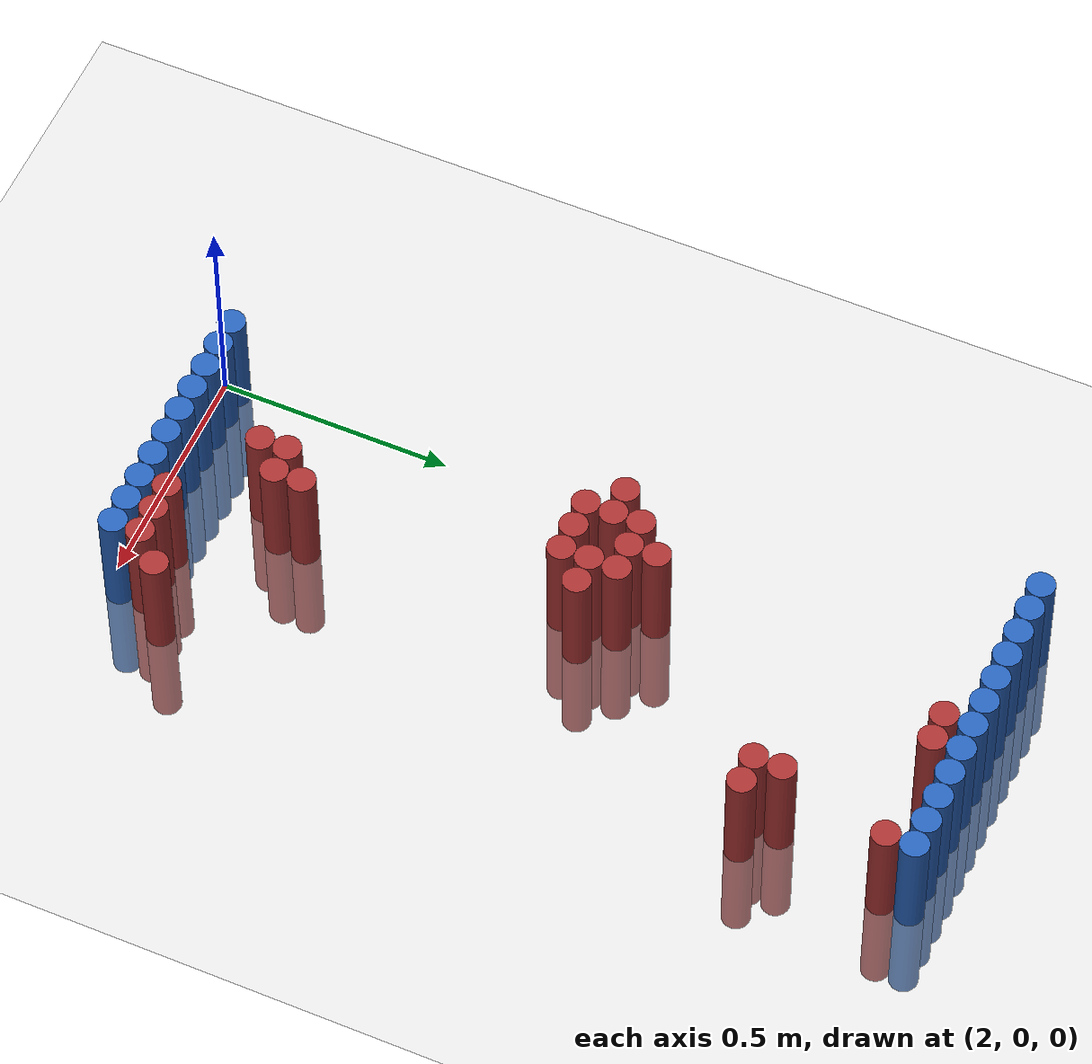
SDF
<sdf version="1.6">
 <world name="default">
  <model name="ground_plane">
   <static>1</static>
   <link name="link">
    <collision name="collision">
     <geometry><plane><normal>0 0 1</normal><size>100 100</size></plane></geometry>
     <surface><friction><ode><mu>100</mu><mu2>50</mu2></ode></friction></surface>
    </collision>
    <visual name="visual">
     <cast_shadows>0</cast_shadows>
     <geometry><plane><normal>0 0 1</normal><size>100 100</size></plane></geometry>
     <material>
      <script><uri>file://media/materials/scripts/gazebo.material</uri><name>Gazebo/Grey</name></script>
     </material>
    </visual>
   </link>
  </model>
  <model name="unit_cylinder_92">
   <static>1</static>
   <pose>1.950000 1.770000 0.000000 0.000000 0.000000 0.000000</pose>
   <link name="link">
    <inertial>
     <mass>1</mass>
     <inertia><ixx>0.145833</ixx><ixy>0</ixy><ixz>0</ixz><iyy>0.145833</iyy><iyz>0</iyz><izz>0.125</izz></inertia>
    </inertial>
    <collision name="collision">
     <geometry><cylinder><radius>0.030000</radius><length>0.5</length></cylinder></geometry>
    </collision>
    <visual name="visual">
     <geometry><cylinder><radius>0.030000</radius><length>0.5</length></cylinder></geometry>
     <material>
      <ambient>0.152000 0.379000 0.720000 1</ambient>
      <diffuse>0.152000 0.379000 0.720000 1</diffuse>
     </material>
     <material>
      <script><name>Gazebo/Grey</name><uri>file://media/materials/scripts/gazebo.material</uri></script>
     </material>
    </visual>
   </link>
  </model>
  <model name="unit_cylinder_93">
   <static>1</static>
   <pose>2.010000 0.030000 0.000000 0.000000 0.000000 0.000000</pose>
   <link name="link">
    <inertial>
     <mass>1</mass>
     <inertia><ixx>0.145833</ixx><ixy>0</ixy><ixz>0</ixz><iyy>0.145833</iyy><iyz>0</iyz><izz>0.125</izz></inertia>
    </inertial>
    <collision name="collision">
     <geometry><cylinder><radius>0.030000</radius><length>0.5</length></cylinder></geometry>
    </collision>
    <visual name="visual">
     <geometry><cylinder><radius>0.030000</radius><length>0.5</length></cylinder></geometry>
     <material>
      <ambient>0.152000 0.379000 0.720000 1</ambient>
      <diffuse>0.152000 0.379000 0.720000 1</diffuse>
     </material>
     <material>
      <script><name>Gazebo/Grey</name><uri>file://media/materials/scripts/gazebo.material</uri></script>
     </material>
    </visual>
   </link>
  </model>
  <model name="unit_cylinder_94">
   <static>1</static>
   <pose>2.010000 1.770000 0.000000 0.000000 0.000000 0.000000</pose>
   <link name="link">
    <inertial>
     <mass>1</mass>
     <inertia><ixx>0.145833</ixx><ixy>0</ixy><ixz>0</ixz><iyy>0.145833</iyy><iyz>0</iyz><izz>0.125</izz></inertia>
    </inertial>
    <collision name="collision">
     <geometry><cylinder><radius>0.030000</radius><length>0.5</length></cylinder></geometry>
    </collision>
    <visual name="visual">
     <geometry><cylinder><radius>0.030000</radius><length>0.5</length></cylinder></geometry>
     <material>
      <ambient>0.152000 0.379000 0.720000 1</ambient>
      <diffuse>0.152000 0.379000 0.720000 1</diffuse>
     </material>
     <material>
      <script><name>Gazebo/Grey</name><uri>file://media/materials/scripts/gazebo.material</uri></script>
     </material>
    </visual>
   </link>
  </model>
  <model name="unit_cylinder_95">
   <static>1</static>
   <pose>2.070000 1.770000 0.000000 0.000000 0.000000 0.000000</pose>
   <link name="link">
    <inertial>
     <mass>1</mass>
     <inertia><ixx>0.145833</ixx><ixy>0</ixy><ixz>0</ixz><iyy>0.145833</iyy><iyz>0</iyz><izz>0.125</izz></inertia>
    </inertial>
    <collision name="collision">
     <geometry><cylinder><radius>0.030000</radius><length>0.5</length></cylinder></geometry>
    </collision>
    <visual name="visual">
     <geometry><cylinder><radius>0.030000</radius><length>0.5</length></cylinder></geometry>
     <material>
      <ambient>0.152000 0.379000 0.720000 1</ambient>
      <diffuse>0.152000 0.379000 0.720000 1</diffuse>
     </material>
     <material>
      <script><name>Gazebo/Grey</name><uri>file://media/materials/scripts/gazebo.material</uri></script>
     </material>
    </visual>
   </link>
  </model>
  <model name="unit_cylinder_96">
   <static>1</static>
   <pose>2.130000 1.770000 0.000000 0.000000 0.000000 0.000000</pose>
   <link name="link">
    <inertial>
     <mass>1</mass>
     <inertia><ixx>0.145833</ixx><ixy>0</ixy><ixz>0</ixz><iyy>0.145833</iyy><iyz>0</iyz><izz>0.125</izz></inertia>
    </inertial>
    <collision name="collision">
     <geometry><cylinder><radius>0.030000</radius><length>0.5</length></cylinder></geometry>
    </collision>
    <visual name="visual">
     <geometry><cylinder><radius>0.030000</radius><length>0.5</length></cylinder></geometry>
     <material>
      <ambient>0.152000 0.379000 0.720000 1</ambient>
      <diffuse>0.152000 0.379000 0.720000 1</diffuse>
     </material>
     <material>
      <script><name>Gazebo/Grey</name><uri>file://media/materials/scripts/gazebo.material</uri></script>
     </material>
    </visual>
   </link>
  </model>
  <model name="unit_cylinder_97">
   <static>1</static>
   <pose>2.190000 1.770000 0.000000 0.000000 0.000000 0.000000</pose>
   <link name="link">
    <inertial>
     <mass>1</mass>
     <inertia><ixx>0.145833</ixx><ixy>0</ixy><ixz>0</ixz><iyy>0.145833</iyy><iyz>0</iyz><izz>0.125</izz></inertia>
    </inertial>
    <collision name="collision">
     <geometry><cylinder><radius>0.030000</radius><length>0.5</length></cylinder></geometry>
    </collision>
    <visual name="visual">
     <geometry><cylinder><radius>0.030000</radius><length>0.5</length></cylinder></geometry>
     <material>
      <ambient>0.152000 0.379000 0.720000 1</ambient>
      <diffuse>0.152000 0.379000 0.720000 1</diffuse>
     </material>
     <material>
      <script><name>Gazebo/Grey</name><uri>file://media/materials/scripts/gazebo.material</uri></script>
     </material>
    </visual>
   </link>
  </model>
  <model name="unit_cylinder_98">
   <static>1</static>
   <pose>2.250000 1.770000 0.000000 0.000000 0.000000 0.000000</pose>
   <link name="link">
    <inertial>
     <mass>1</mass>
     <inertia><ixx>0.145833</ixx><ixy>0</ixy><ixz>0</ixz><iyy>0.145833</iyy><iyz>0</iyz><izz>0.125</izz></inertia>
    </inertial>
    <collision name="collision">
     <geometry><cylinder><radius>0.030000</radius><length>0.5</length></cylinder></geometry>
    </collision>
    <visual name="visual">
     <geometry><cylinder><radius>0.030000</radius><length>0.5</length></cylinder></geometry>
     <material>
      <ambient>0.152000 0.379000 0.720000 1</ambient>
      <diffuse>0.152000 0.379000 0.720000 1</diffuse>
     </material>
     <material>
      <script><name>Gazebo/Grey</name><uri>file://media/materials/scripts/gazebo.material</uri></script>
     </material>
    </visual>
   </link>
  </model>
  <model name="unit_cylinder_99">
   <static>1</static>
   <pose>2.310000 1.770000 0.000000 0.000000 0.000000 0.000000</pose>
   <link name="link">
    <inertial>
     <mass>1</mass>
     <inertia><ixx>0.145833</ixx><ixy>0</ixy><ixz>0</ixz><iyy>0.145833</iyy><iyz>0</iyz><izz>0.125</izz></inertia>
    </inertial>
    <collision name="collision">
     <geometry><cylinder><radius>0.030000</radius><length>0.5</length></cylinder></geometry>
    </collision>
    <visual name="visual">
     <geometry><cylinder><radius>0.030000</radius><length>0.5</length></cylinder></geometry>
     <material>
      <ambient>0.152000 0.379000 0.720000 1</ambient>
      <diffuse>0.152000 0.379000 0.720000 1</diffuse>
     </material>
     <material>
      <script><name>Gazebo/Grey</name><uri>file://media/materials/scripts/gazebo.material</uri></script>
     </material>
    </visual>
   </link>
  </model>
  <model name="unit_cylinder_100">
   <static>1</static>
   <pose>2.370000 1.770000 0.000000 0.000000 0.000000 0.000000</pose>
   <link name="link">
    <inertial>
     <mass>1</mass>
     <inertia><ixx>0.145833</ixx><ixy>0</ixy><ixz>0</ixz><iyy>0.145833</iyy><iyz>0</iyz><izz>0.125</izz></inertia>
    </inertial>
    <collision name="collision">
     <geometry><cylinder><radius>0.030000</radius><length>0.5</length></cylinder></geometry>
    </collision>
    <visual name="visual">
     <geometry><cylinder><radius>0.030000</radius><length>0.5</length></cylinder></geometry>
     <material>
      <ambient>0.152000 0.379000 0.720000 1</ambient>
      <diffuse>0.152000 0.379000 0.720000 1</diffuse>
     </material>
     <material>
      <script><name>Gazebo/Grey</name><uri>file://media/materials/scripts/gazebo.material</uri></script>
     </material>
    </visual>
   </link>
  </model>
  <model name="unit_cylinder_101">
   <static>1</static>
   <pose>2.430000 1.770000 0.000000 0.000000 0.000000 0.000000</pose>
   <link name="link">
    <inertial>
     <mass>1</mass>
     <inertia><ixx>0.145833</ixx><ixy>0</ixy><ixz>0</ixz><iyy>0.145833</iyy><iyz>0</iyz><izz>0.125</izz></inertia>
    </inertial>
    <collision name="collision">
     <geometry><cylinder><radius>0.030000</radius><length>0.5</length></cylinder></geometry>
    </collision>
    <visual name="visual">
     <geometry><cylinder><radius>0.030000</radius><length>0.5</length></cylinder></geometry>
     <material>
      <ambient>0.152000 0.379000 0.720000 1</ambient>
      <diffuse>0.152000 0.379000 0.720000 1</diffuse>
     </material>
     <material>
      <script><name>Gazebo/Grey</name><uri>file://media/materials/scripts/gazebo.material</uri></script>
     </material>
    </visual>
   </link>
  </model>
  <model name="unit_cylinder_102">
   <static>1</static>
   <pose>2.490000 1.770000 0.000000 0.000000 0.000000 0.000000</pose>
   <link name="link">
    <inertial>
     <mass>1</mass>
     <inertia><ixx>0.145833</ixx><ixy>0</ixy><ixz>0</ixz><iyy>0.145833</iyy><iyz>0</iyz><izz>0.125</izz></inertia>
    </inertial>
    <collision name="collision">
     <geometry><cylinder><radius>0.030000</radius><length>0.5</length></cylinder></geometry>
    </collision>
    <visual name="visual">
     <geometry><cylinder><radius>0.030000</radius><length>0.5</length></cylinder></geometry>
     <material>
      <ambient>0.152000 0.379000 0.720000 1</ambient>
      <diffuse>0.152000 0.379000 0.720000 1</diffuse>
     </material>
     <material>
      <script><name>Gazebo/Grey</name><uri>file://media/materials/scripts/gazebo.material</uri></script>
     </material>
    </visual>
   </link>
  </model>
  <model name="unit_cylinder_103">
   <static>1</static>
   <pose>2.550000 1.770000 0.000000 0.000000 0.000000 0.000000</pose>
   <link name="link">
    <inertial>
     <mass>1</mass>
     <inertia><ixx>0.145833</ixx><ixy>0</ixy><ixz>0</ixz><iyy>0.145833</iyy><iyz>0</iyz><izz>0.125</izz></inertia>
    </inertial>
    <collision name="collision">
     <geometry><cylinder><radius>0.030000</radius><length>0.5</length></cylinder></geometry>
    </collision>
    <visual name="visual">
     <geometry><cylinder><radius>0.030000</radius><length>0.5</length></cylinder></geometry>
     <material>
      <ambient>0.152000 0.379000 0.720000 1</ambient>
      <diffuse>0.152000 0.379000 0.720000 1</diffuse>
     </material>
     <material>
      <script><name>Gazebo/Grey</name><uri>file://media/materials/scripts/gazebo.material</uri></script>
     </material>
    </visual>
   </link>
  </model>
  <model name="unit_cylinder_104">
   <static>1</static>
   <pose>2.610000 1.770000 0.000000 0.000000 0.000000 0.000000</pose>
   <link name="link">
    <inertial>
     <mass>1</mass>
     <inertia><ixx>0.145833</ixx><ixy>0</ixy><ixz>0</ixz><iyy>0.145833</iyy><iyz>0</iyz><izz>0.125</izz></inertia>
    </inertial>
    <collision name="collision">
     <geometry><cylinder><radius>0.030000</radius><length>0.5</length></cylinder></geometry>
    </collision>
    <visual name="visual">
     <geometry><cylinder><radius>0.030000</radius><length>0.5</length></cylinder></geometry>
     <material>
      <ambient>0.152000 0.379000 0.720000 1</ambient>
      <diffuse>0.152000 0.379000 0.720000 1</diffuse>
     </material>
     <material>
      <script><name>Gazebo/Grey</name><uri>file://media/materials/scripts/gazebo.material</uri></script>
     </material>
    </visual>
   </link>
  </model>
  <model name="unit_cylinder_125">
   <static>1</static>
   <pose>2.310000 1.710000 0.000000 0.000000 0.000000 0.000000</pose>
   <link name="link">
    <inertial>
     <mass>1</mass>
     <inertia><ixx>0.145833</ixx><ixy>0</ixy><ixz>0</ixz><iyy>0.145833</iyy><iyz>0</iyz><izz>0.125</izz></inertia>
    </inertial>
    <collision name="collision">
     <geometry><cylinder><radius>0.030000</radius><length>0.5</length></cylinder></geometry>
    </collision>
    <visual name="visual">
     <geometry><cylinder><radius>0.030000</radius><length>0.5</length></cylinder></geometry>
     <material>
      <ambient>0.648000 0.192000 0.192000 1</ambient>
      <diffuse>0.648000 0.192000 0.192000 1</diffuse>
     </material>
     <material>
      <script><name>Gazebo/Grey</name><uri>file://media/materials/scripts/gazebo.material</uri></script>
     </material>
    </visual>
   </link>
  </model>
  <model name="unit_cylinder_126">
   <static>1</static>
   <pose>2.370000 1.710000 0.000000 0.000000 0.000000 0.000000</pose>
   <link name="link">
    <inertial>
     <mass>1</mass>
     <inertia><ixx>0.145833</ixx><ixy>0</ixy><ixz>0</ixz><iyy>0.145833</iyy><iyz>0</iyz><izz>0.125</izz></inertia>
    </inertial>
    <collision name="collision">
     <geometry><cylinder><radius>0.030000</radius><length>0.5</length></cylinder></geometry>
    </collision>
    <visual name="visual">
     <geometry><cylinder><radius>0.030000</radius><length>0.5</length></cylinder></geometry>
     <material>
      <ambient>0.648000 0.192000 0.192000 1</ambient>
      <diffuse>0.648000 0.192000 0.192000 1</diffuse>
     </material>
     <material>
      <script><name>Gazebo/Grey</name><uri>file://media/materials/scripts/gazebo.material</uri></script>
     </material>
    </visual>
   </link>
  </model>
  <model name="unit_cylinder_127">
   <static>1</static>
   <pose>2.610000 1.710000 0.000000 0.000000 0.000000 0.000000</pose>
   <link name="link">
    <inertial>
     <mass>1</mass>
     <inertia><ixx>0.145833</ixx><ixy>0</ixy><ixz>0</ixz><iyy>0.145833</iyy><iyz>0</iyz><izz>0.125</izz></inertia>
    </inertial>
    <collision name="collision">
     <geometry><cylinder><radius>0.030000</radius><length>0.5</length></cylinder></geometry>
    </collision>
    <visual name="visual">
     <geometry><cylinder><radius>0.030000</radius><length>0.5</length></cylinder></geometry>
     <material>
      <ambient>0.648000 0.192000 0.192000 1</ambient>
      <diffuse>0.648000 0.192000 0.192000 1</diffuse>
     </material>
     <material>
      <script><name>Gazebo/Grey</name><uri>file://media/materials/scripts/gazebo.material</uri></script>
     </material>
    </visual>
   </link>
  </model>
  <model name="unit_cylinder_156">
   <static>1</static>
   <pose>2.550000 1.470000 0.000000 0.000000 0.000000 0.000000</pose>
   <link name="link">
    <inertial>
     <mass>1</mass>
     <inertia><ixx>0.145833</ixx><ixy>0</ixy><ixz>0</ixz><iyy>0.145833</iyy><iyz>0</iyz><izz>0.125</izz></inertia>
    </inertial>
    <collision name="collision">
     <geometry><cylinder><radius>0.030000</radius><length>0.5</length></cylinder></geometry>
    </collision>
    <visual name="visual">
     <geometry><cylinder><radius>0.030000</radius><length>0.5</length></cylinder></geometry>
     <material>
      <ambient>0.648000 0.192000 0.192000 1</ambient>
      <diffuse>0.648000 0.192000 0.192000 1</diffuse>
     </material>
     <material>
      <script><name>Gazebo/Grey</name><uri>file://media/materials/scripts/gazebo.material</uri></script>
     </material>
    </visual>
   </link>
  </model>
  <model name="unit_cylinder_163">
   <static>1</static>
   <pose>2.550000 1.410000 0.000000 0.000000 0.000000 0.000000</pose>
   <link name="link">
    <inertial>
     <mass>1</mass>
     <inertia><ixx>0.145833</ixx><ixy>0</ixy><ixz>0</ixz><iyy>0.145833</iyy><iyz>0</iyz><izz>0.125</izz></inertia>
    </inertial>
    <collision name="collision">
     <geometry><cylinder><radius>0.030000</radius><length>0.5</length></cylinder></geometry>
    </collision>
    <visual name="visual">
     <geometry><cylinder><radius>0.030000</radius><length>0.5</length></cylinder></geometry>
     <material>
      <ambient>0.648000 0.192000 0.192000 1</ambient>
      <diffuse>0.648000 0.192000 0.192000 1</diffuse>
     </material>
     <material>
      <script><name>Gazebo/Grey</name><uri>file://media/materials/scripts/gazebo.material</uri></script>
     </material>
    </visual>
   </link>
  </model>
  <model name="unit_cylinder_164">
   <static>1</static>
   <pose>2.610000 1.410000 0.000000 0.000000 0.000000 0.000000</pose>
   <link name="link">
    <inertial>
     <mass>1</mass>
     <inertia><ixx>0.145833</ixx><ixy>0</ixy><ixz>0</ixz><iyy>0.145833</iyy><iyz>0</iyz><izz>0.125</izz></inertia>
    </inertial>
    <collision name="collision">
     <geometry><cylinder><radius>0.030000</radius><length>0.5</length></cylinder></geometry>
    </collision>
    <visual name="visual">
     <geometry><cylinder><radius>0.030000</radius><length>0.5</length></cylinder></geometry>
     <material>
      <ambient>0.648000 0.192000 0.192000 1</ambient>
      <diffuse>0.648000 0.192000 0.192000 1</diffuse>
     </material>
     <material>
      <script><name>Gazebo/Grey</name><uri>file://media/materials/scripts/gazebo.material</uri></script>
     </material>
    </visual>
   </link>
  </model>
  <model name="unit_cylinder_175">
   <static>1</static>
   <pose>2.190000 1.050000 0.000000 0.000000 0.000000 0.000000</pose>
   <link name="link">
    <inertial>
     <mass>1</mass>
     <inertia><ixx>0.145833</ixx><ixy>0</ixy><ixz>0</ixz><iyy>0.145833</iyy><iyz>0</iyz><izz>0.125</izz></inertia>
    </inertial>
    <collision name="collision">
     <geometry><cylinder><radius>0.030000</radius><length>0.5</length></cylinder></geometry>
    </collision>
    <visual name="visual">
     <geometry><cylinder><radius>0.030000</radius><length>0.5</length></cylinder></geometry>
     <material>
      <ambient>0.648000 0.192000 0.192000 1</ambient>
      <diffuse>0.648000 0.192000 0.192000 1</diffuse>
     </material>
     <material>
      <script><name>Gazebo/Grey</name><uri>file://media/materials/scripts/gazebo.material</uri></script>
     </material>
    </visual>
   </link>
  </model>
  <model name="unit_cylinder_176">
   <static>1</static>
   <pose>2.130000 0.990000 0.000000 0.000000 0.000000 0.000000</pose>
   <link name="link">
    <inertial>
     <mass>1</mass>
     <inertia><ixx>0.145833</ixx><ixy>0</ixy><ixz>0</ixz><iyy>0.145833</iyy><iyz>0</iyz><izz>0.125</izz></inertia>
    </inertial>
    <collision name="collision">
     <geometry><cylinder><radius>0.030000</radius><length>0.5</length></cylinder></geometry>
    </collision>
    <visual name="visual">
     <geometry><cylinder><radius>0.030000</radius><length>0.5</length></cylinder></geometry>
     <material>
      <ambient>0.648000 0.192000 0.192000 1</ambient>
      <diffuse>0.648000 0.192000 0.192000 1</diffuse>
     </material>
     <material>
      <script><name>Gazebo/Grey</name><uri>file://media/materials/scripts/gazebo.material</uri></script>
     </material>
    </visual>
   </link>
  </model>
  <model name="unit_cylinder_177">
   <static>1</static>
   <pose>2.190000 0.990000 0.000000 0.000000 0.000000 0.000000</pose>
   <link name="link">
    <inertial>
     <mass>1</mass>
     <inertia><ixx>0.145833</ixx><ixy>0</ixy><ixz>0</ixz><iyy>0.145833</iyy><iyz>0</iyz><izz>0.125</izz></inertia>
    </inertial>
    <collision name="collision">
     <geometry><cylinder><radius>0.030000</radius><length>0.5</length></cylinder></geometry>
    </collision>
    <visual name="visual">
     <geometry><cylinder><radius>0.030000</radius><length>0.5</length></cylinder></geometry>
     <material>
      <ambient>0.648000 0.192000 0.192000 1</ambient>
      <diffuse>0.648000 0.192000 0.192000 1</diffuse>
     </material>
     <material>
      <script><name>Gazebo/Grey</name><uri>file://media/materials/scripts/gazebo.material</uri></script>
     </material>
    </visual>
   </link>
  </model>
  <model name="unit_cylinder_178">
   <static>1</static>
   <pose>2.250000 0.990000 0.000000 0.000000 0.000000 0.000000</pose>
   <link name="link">
    <inertial>
     <mass>1</mass>
     <inertia><ixx>0.145833</ixx><ixy>0</ixy><ixz>0</ixz><iyy>0.145833</iyy><iyz>0</iyz><izz>0.125</izz></inertia>
    </inertial>
    <collision name="collision">
     <geometry><cylinder><radius>0.030000</radius><length>0.5</length></cylinder></geometry>
    </collision>
    <visual name="visual">
     <geometry><cylinder><radius>0.030000</radius><length>0.5</length></cylinder></geometry>
     <material>
      <ambient>0.648000 0.192000 0.192000 1</ambient>
      <diffuse>0.648000 0.192000 0.192000 1</diffuse>
     </material>
     <material>
      <script><name>Gazebo/Grey</name><uri>file://media/materials/scripts/gazebo.material</uri></script>
     </material>
    </visual>
   </link>
  </model>
  <model name="unit_cylinder_181">
   <static>1</static>
   <pose>2.070000 0.930000 0.000000 0.000000 0.000000 0.000000</pose>
   <link name="link">
    <inertial>
     <mass>1</mass>
     <inertia><ixx>0.145833</ixx><ixy>0</ixy><ixz>0</ixz><iyy>0.145833</iyy><iyz>0</iyz><izz>0.125</izz></inertia>
    </inertial>
    <collision name="collision">
     <geometry><cylinder><radius>0.030000</radius><length>0.5</length></cylinder></geometry>
    </collision>
    <visual name="visual">
     <geometry><cylinder><radius>0.030000</radius><length>0.5</length></cylinder></geometry>
     <material>
      <ambient>0.648000 0.192000 0.192000 1</ambient>
      <diffuse>0.648000 0.192000 0.192000 1</diffuse>
     </material>
     <material>
      <script><name>Gazebo/Grey</name><uri>file://media/materials/scripts/gazebo.material</uri></script>
     </material>
    </visual>
   </link>
  </model>
  <model name="unit_cylinder_182">
   <static>1</static>
   <pose>2.130000 0.930000 0.000000 0.000000 0.000000 0.000000</pose>
   <link name="link">
    <inertial>
     <mass>1</mass>
     <inertia><ixx>0.145833</ixx><ixy>0</ixy><ixz>0</ixz><iyy>0.145833</iyy><iyz>0</iyz><izz>0.125</izz></inertia>
    </inertial>
    <collision name="collision">
     <geometry><cylinder><radius>0.030000</radius><length>0.5</length></cylinder></geometry>
    </collision>
    <visual name="visual">
     <geometry><cylinder><radius>0.030000</radius><length>0.5</length></cylinder></geometry>
     <material>
      <ambient>0.648000 0.192000 0.192000 1</ambient>
      <diffuse>0.648000 0.192000 0.192000 1</diffuse>
     </material>
     <material>
      <script><name>Gazebo/Grey</name><uri>file://media/materials/scripts/gazebo.material</uri></script>
     </material>
    </visual>
   </link>
  </model>
  <model name="unit_cylinder_183">
   <static>1</static>
   <pose>2.250000 0.930000 0.000000 0.000000 0.000000 0.000000</pose>
   <link name="link">
    <inertial>
     <mass>1</mass>
     <inertia><ixx>0.145833</ixx><ixy>0</ixy><ixz>0</ixz><iyy>0.145833</iyy><iyz>0</iyz><izz>0.125</izz></inertia>
    </inertial>
    <collision name="collision">
     <geometry><cylinder><radius>0.030000</radius><length>0.5</length></cylinder></geometry>
    </collision>
    <visual name="visual">
     <geometry><cylinder><radius>0.030000</radius><length>0.5</length></cylinder></geometry>
     <material>
      <ambient>0.648000 0.192000 0.192000 1</ambient>
      <diffuse>0.648000 0.192000 0.192000 1</diffuse>
     </material>
     <material>
      <script><name>Gazebo/Grey</name><uri>file://media/materials/scripts/gazebo.material</uri></script>
     </material>
    </visual>
   </link>
  </model>
  <model name="unit_cylinder_184">
   <static>1</static>
   <pose>2.310000 0.930000 0.000000 0.000000 0.000000 0.000000</pose>
   <link name="link">
    <inertial>
     <mass>1</mass>
     <inertia><ixx>0.145833</ixx><ixy>0</ixy><ixz>0</ixz><iyy>0.145833</iyy><iyz>0</iyz><izz>0.125</izz></inertia>
    </inertial>
    <collision name="collision">
     <geometry><cylinder><radius>0.030000</radius><length>0.5</length></cylinder></geometry>
    </collision>
    <visual name="visual">
     <geometry><cylinder><radius>0.030000</radius><length>0.5</length></cylinder></geometry>
     <material>
      <ambient>0.648000 0.192000 0.192000 1</ambient>
      <diffuse>0.648000 0.192000 0.192000 1</diffuse>
     </material>
     <material>
      <script><name>Gazebo/Grey</name><uri>file://media/materials/scripts/gazebo.material</uri></script>
     </material>
    </visual>
   </link>
  </model>
  <model name="unit_cylinder_188">
   <static>1</static>
   <pose>2.130000 0.870000 0.000000 0.000000 0.000000 0.000000</pose>
   <link name="link">
    <inertial>
     <mass>1</mass>
     <inertia><ixx>0.145833</ixx><ixy>0</ixy><ixz>0</ixz><iyy>0.145833</iyy><iyz>0</iyz><izz>0.125</izz></inertia>
    </inertial>
    <collision name="collision">
     <geometry><cylinder><radius>0.030000</radius><length>0.5</length></cylinder></geometry>
    </collision>
    <visual name="visual">
     <geometry><cylinder><radius>0.030000</radius><length>0.5</length></cylinder></geometry>
     <material>
      <ambient>0.648000 0.192000 0.192000 1</ambient>
      <diffuse>0.648000 0.192000 0.192000 1</diffuse>
     </material>
     <material>
      <script><name>Gazebo/Grey</name><uri>file://media/materials/scripts/gazebo.material</uri></script>
     </material>
    </visual>
   </link>
  </model>
  <model name="unit_cylinder_189">
   <static>1</static>
   <pose>2.190000 0.870000 0.000000 0.000000 0.000000 0.000000</pose>
   <link name="link">
    <inertial>
     <mass>1</mass>
     <inertia><ixx>0.145833</ixx><ixy>0</ixy><ixz>0</ixz><iyy>0.145833</iyy><iyz>0</iyz><izz>0.125</izz></inertia>
    </inertial>
    <collision name="collision">
     <geometry><cylinder><radius>0.030000</radius><length>0.5</length></cylinder></geometry>
    </collision>
    <visual name="visual">
     <geometry><cylinder><radius>0.030000</radius><length>0.5</length></cylinder></geometry>
     <material>
      <ambient>0.648000 0.192000 0.192000 1</ambient>
      <diffuse>0.648000 0.192000 0.192000 1</diffuse>
     </material>
     <material>
      <script><name>Gazebo/Grey</name><uri>file://media/materials/scripts/gazebo.material</uri></script>
     </material>
    </visual>
   </link>
  </model>
  <model name="unit_cylinder_190">
   <static>1</static>
   <pose>2.250000 0.870000 0.000000 0.000000 0.000000 0.000000</pose>
   <link name="link">
    <inertial>
     <mass>1</mass>
     <inertia><ixx>0.145833</ixx><ixy>0</ixy><ixz>0</ixz><iyy>0.145833</iyy><iyz>0</iyz><izz>0.125</izz></inertia>
    </inertial>
    <collision name="collision">
     <geometry><cylinder><radius>0.030000</radius><length>0.5</length></cylinder></geometry>
    </collision>
    <visual name="visual">
     <geometry><cylinder><radius>0.030000</radius><length>0.5</length></cylinder></geometry>
     <material>
      <ambient>0.648000 0.192000 0.192000 1</ambient>
      <diffuse>0.648000 0.192000 0.192000 1</diffuse>
     </material>
     <material>
      <script><name>Gazebo/Grey</name><uri>file://media/materials/scripts/gazebo.material</uri></script>
     </material>
    </visual>
   </link>
  </model>
  <model name="unit_cylinder_213">
   <static>1</static>
   <pose>2.310000 0.330000 0.000000 0.000000 0.000000 0.000000</pose>
   <link name="link">
    <inertial>
     <mass>1</mass>
     <inertia><ixx>0.145833</ixx><ixy>0</ixy><ixz>0</ixz><iyy>0.145833</iyy><iyz>0</iyz><izz>0.125</izz></inertia>
    </inertial>
    <collision name="collision">
     <geometry><cylinder><radius>0.030000</radius><length>0.5</length></cylinder></geometry>
    </collision>
    <visual name="visual">
     <geometry><cylinder><radius>0.030000</radius><length>0.5</length></cylinder></geometry>
     <material>
      <ambient>0.648000 0.192000 0.192000 1</ambient>
      <diffuse>0.648000 0.192000 0.192000 1</diffuse>
     </material>
     <material>
      <script><name>Gazebo/Grey</name><uri>file://media/materials/scripts/gazebo.material</uri></script>
     </material>
    </visual>
   </link>
  </model>
  <model name="unit_cylinder_223">
   <static>1</static>
   <pose>2.250000 0.270000 0.000000 0.000000 0.000000 0.000000</pose>
   <link name="link">
    <inertial>
     <mass>1</mass>
     <inertia><ixx>0.145833</ixx><ixy>0</ixy><ixz>0</ixz><iyy>0.145833</iyy><iyz>0</iyz><izz>0.125</izz></inertia>
    </inertial>
    <collision name="collision">
     <geometry><cylinder><radius>0.030000</radius><length>0.5</length></cylinder></geometry>
    </collision>
    <visual name="visual">
     <geometry><cylinder><radius>0.030000</radius><length>0.5</length></cylinder></geometry>
     <material>
      <ambient>0.648000 0.192000 0.192000 1</ambient>
      <diffuse>0.648000 0.192000 0.192000 1</diffuse>
     </material>
     <material>
      <script><name>Gazebo/Grey</name><uri>file://media/materials/scripts/gazebo.material</uri></script>
     </material>
    </visual>
   </link>
  </model>
  <model name="unit_cylinder_224">
   <static>1</static>
   <pose>2.310000 0.270000 0.000000 0.000000 0.000000 0.000000</pose>
   <link name="link">
    <inertial>
     <mass>1</mass>
     <inertia><ixx>0.145833</ixx><ixy>0</ixy><ixz>0</ixz><iyy>0.145833</iyy><iyz>0</iyz><izz>0.125</izz></inertia>
    </inertial>
    <collision name="collision">
     <geometry><cylinder><radius>0.030000</radius><length>0.5</length></cylinder></geometry>
    </collision>
    <visual name="visual">
     <geometry><cylinder><radius>0.030000</radius><length>0.5</length></cylinder></geometry>
     <material>
      <ambient>0.648000 0.192000 0.192000 1</ambient>
      <diffuse>0.648000 0.192000 0.192000 1</diffuse>
     </material>
     <material>
      <script><name>Gazebo/Grey</name><uri>file://media/materials/scripts/gazebo.material</uri></script>
     </material>
    </visual>
   </link>
  </model>
  <model name="unit_cylinder_230">
   <static>1</static>
   <pose>2.250000 0.210000 0.000000 0.000000 0.000000 0.000000</pose>
   <link name="link">
    <inertial>
     <mass>1</mass>
     <inertia><ixx>0.145833</ixx><ixy>0</ixy><ixz>0</ixz><iyy>0.145833</iyy><iyz>0</iyz><izz>0.125</izz></inertia>
    </inertial>
    <collision name="collision">
     <geometry><cylinder><radius>0.030000</radius><length>0.5</length></cylinder></geometry>
    </collision>
    <visual name="visual">
     <geometry><cylinder><radius>0.030000</radius><length>0.5</length></cylinder></geometry>
     <material>
      <ambient>0.648000 0.192000 0.192000 1</ambient>
      <diffuse>0.648000 0.192000 0.192000 1</diffuse>
     </material>
     <material>
      <script><name>Gazebo/Grey</name><uri>file://media/materials/scripts/gazebo.material</uri></script>
     </material>
    </visual>
   </link>
  </model>
  <model name="unit_cylinder_233">
   <static>1</static>
   <pose>2.610000 0.150000 0.000000 0.000000 0.000000 0.000000</pose>
   <link name="link">
    <inertial>
     <mass>1</mass>
     <inertia><ixx>0.145833</ixx><ixy>0</ixy><ixz>0</ixz><iyy>0.145833</iyy><iyz>0</iyz><izz>0.125</izz></inertia>
    </inertial>
    <collision name="collision">
     <geometry><cylinder><radius>0.030000</radius><length>0.5</length></cylinder></geometry>
    </collision>
    <visual name="visual">
     <geometry><cylinder><radius>0.030000</radius><length>0.5</length></cylinder></geometry>
     <material>
      <ambient>0.648000 0.192000 0.192000 1</ambient>
      <diffuse>0.648000 0.192000 0.192000 1</diffuse>
     </material>
     <material>
      <script><name>Gazebo/Grey</name><uri>file://media/materials/scripts/gazebo.material</uri></script>
     </material>
    </visual>
   </link>
  </model>
  <model name="unit_cylinder_234">
   <static>1</static>
   <pose>2.430000 0.090000 0.000000 0.000000 0.000000 0.000000</pose>
   <link name="link">
    <inertial>
     <mass>1</mass>
     <inertia><ixx>0.145833</ixx><ixy>0</ixy><ixz>0</ixz><iyy>0.145833</iyy><iyz>0</iyz><izz>0.125</izz></inertia>
    </inertial>
    <collision name="collision">
     <geometry><cylinder><radius>0.030000</radius><length>0.5</length></cylinder></geometry>
    </collision>
    <visual name="visual">
     <geometry><cylinder><radius>0.030000</radius><length>0.5</length></cylinder></geometry>
     <material>
      <ambient>0.648000 0.192000 0.192000 1</ambient>
      <diffuse>0.648000 0.192000 0.192000 1</diffuse>
     </material>
     <material>
      <script><name>Gazebo/Grey</name><uri>file://media/materials/scripts/gazebo.material</uri></script>
     </material>
    </visual>
   </link>
  </model>
  <model name="unit_cylinder_235">
   <static>1</static>
   <pose>2.490000 0.090000 0.000000 0.000000 0.000000 0.000000</pose>
   <link name="link">
    <inertial>
     <mass>1</mass>
     <inertia><ixx>0.145833</ixx><ixy>0</ixy><ixz>0</ixz><iyy>0.145833</iyy><iyz>0</iyz><izz>0.125</izz></inertia>
    </inertial>
    <collision name="collision">
     <geometry><cylinder><radius>0.030000</radius><length>0.5</length></cylinder></geometry>
    </collision>
    <visual name="visual">
     <geometry><cylinder><radius>0.030000</radius><length>0.5</length></cylinder></geometry>
     <material>
      <ambient>0.648000 0.192000 0.192000 1</ambient>
      <diffuse>0.648000 0.192000 0.192000 1</diffuse>
     </material>
     <material>
      <script><name>Gazebo/Grey</name><uri>file://media/materials/scripts/gazebo.material</uri></script>
     </material>
    </visual>
   </link>
  </model>
  <model name="unit_cylinder_236">
   <static>1</static>
   <pose>2.550000 0.090000 0.000000 0.000000 0.000000 0.000000</pose>
   <link name="link">
    <inertial>
     <mass>1</mass>
     <inertia><ixx>0.145833</ixx><ixy>0</ixy><ixz>0</ixz><iyy>0.145833</iyy><iyz>0</iyz><izz>0.125</izz></inertia>
    </inertial>
    <collision name="collision">
     <geometry><cylinder><radius>0.030000</radius><length>0.5</length></cylinder></geometry>
    </collision>
    <visual name="visual">
     <geometry><cylinder><radius>0.030000</radius><length>0.5</length></cylinder></geometry>
     <material>
      <ambient>0.648000 0.192000 0.192000 1</ambient>
      <diffuse>0.648000 0.192000 0.192000 1</diffuse>
     </material>
     <material>
      <script><name>Gazebo/Grey</name><uri>file://media/materials/scripts/gazebo.material</uri></script>
     </material>
    </visual>
   </link>
  </model>
  <model name="unit_cylinder_248">
   <static>1</static>
   <pose>2.070000 0.030000 0.000000 0.000000 0.000000 0.000000</pose>
   <link name="link">
    <inertial>
     <mass>1</mass>
     <inertia><ixx>0.145833</ixx><ixy>0</ixy><ixz>0</ixz><iyy>0.145833</iyy><iyz>0</iyz><izz>0.125</izz></inertia>
    </inertial>
    <collision name="collision">
     <geometry><cylinder><radius>0.030000</radius><length>0.5</length></cylinder></geometry>
    </collision>
    <visual name="visual">
     <geometry><cylinder><radius>0.030000</radius><length>0.5</length></cylinder></geometry>
     <material>
      <ambient>0.152000 0.379000 0.720000 1</ambient>
      <diffuse>0.152000 0.379000 0.720000 1</diffuse>
     </material>
     <material>
      <script><name>Gazebo/Grey</name><uri>file://media/materials/scripts/gazebo.material</uri></script>
     </material>
    </visual>
   </link>
  </model>
  <model name="unit_cylinder_249">
   <static>1</static>
   <pose>2.130000 0.030000 0.000000 0.000000 0.000000 0.000000</pose>
   <link name="link">
    <inertial>
     <mass>1</mass>
     <inertia><ixx>0.145833</ixx><ixy>0</ixy><ixz>0</ixz><iyy>0.145833</iyy><iyz>0</iyz><izz>0.125</izz></inertia>
    </inertial>
    <collision name="collision">
     <geometry><cylinder><radius>0.030000</radius><length>0.5</length></cylinder></geometry>
    </collision>
    <visual name="visual">
     <geometry><cylinder><radius>0.030000</radius><length>0.5</length></cylinder></geometry>
     <material>
      <ambient>0.152000 0.379000 0.720000 1</ambient>
      <diffuse>0.152000 0.379000 0.720000 1</diffuse>
     </material>
     <material>
      <script><name>Gazebo/Grey</name><uri>file://media/materials/scripts/gazebo.material</uri></script>
     </material>
    </visual>
   </link>
  </model>
  <model name="unit_cylinder_250">
   <static>1</static>
   <pose>2.190000 0.030000 0.000000 0.000000 0.000000 0.000000</pose>
   <link name="link">
    <inertial>
     <mass>1</mass>
     <inertia><ixx>0.145833</ixx><ixy>0</ixy><ixz>0</ixz><iyy>0.145833</iyy><iyz>0</iyz><izz>0.125</izz></inertia>
    </inertial>
    <collision name="collision">
     <geometry><cylinder><radius>0.030000</radius><length>0.5</length></cylinder></geometry>
    </collision>
    <visual name="visual">
     <geometry><cylinder><radius>0.030000</radius><length>0.5</length></cylinder></geometry>
     <material>
      <ambient>0.152000 0.379000 0.720000 1</ambient>
      <diffuse>0.152000 0.379000 0.720000 1</diffuse>
     </material>
     <material>
      <script><name>Gazebo/Grey</name><uri>file://media/materials/scripts/gazebo.material</uri></script>
     </material>
    </visual>
   </link>
  </model>
  <model name="unit_cylinder_251">
   <static>1</static>
   <pose>2.250000 0.030000 0.000000 0.000000 0.000000 0.000000</pose>
   <link name="link">
    <inertial>
     <mass>1</mass>
     <inertia><ixx>0.145833</ixx><ixy>0</ixy><ixz>0</ixz><iyy>0.145833</iyy><iyz>0</iyz><izz>0.125</izz></inertia>
    </inertial>
    <collision name="collision">
     <geometry><cylinder><radius>0.030000</radius><length>0.5</length></cylinder></geometry>
    </collision>
    <visual name="visual">
     <geometry><cylinder><radius>0.030000</radius><length>0.5</length></cylinder></geometry>
     <material>
      <ambient>0.152000 0.379000 0.720000 1</ambient>
      <diffuse>0.152000 0.379000 0.720000 1</diffuse>
     </material>
     <material>
      <script><name>Gazebo/Grey</name><uri>file://media/materials/scripts/gazebo.material</uri></script>
     </material>
    </visual>
   </link>
  </model>
  <model name="unit_cylinder_252">
   <static>1</static>
   <pose>2.310000 0.030000 0.000000 0.000000 0.000000 0.000000</pose>
   <link name="link">
    <inertial>
     <mass>1</mass>
     <inertia><ixx>0.145833</ixx><ixy>0</ixy><ixz>0</ixz><iyy>0.145833</iyy><iyz>0</iyz><izz>0.125</izz></inertia>
    </inertial>
    <collision name="collision">
     <geometry><cylinder><radius>0.030000</radius><length>0.5</length></cylinder></geometry>
    </collision>
    <visual name="visual">
     <geometry><cylinder><radius>0.030000</radius><length>0.5</length></cylinder></geometry>
     <material>
      <ambient>0.152000 0.379000 0.720000 1</ambient>
      <diffuse>0.152000 0.379000 0.720000 1</diffuse>
     </material>
     <material>
      <script><name>Gazebo/Grey</name><uri>file://media/materials/scripts/gazebo.material</uri></script>
     </material>
    </visual>
   </link>
  </model>
  <model name="unit_cylinder_253">
   <static>1</static>
   <pose>2.370000 0.030000 0.000000 0.000000 0.000000 0.000000</pose>
   <link name="link">
    <inertial>
     <mass>1</mass>
     <inertia><ixx>0.145833</ixx><ixy>0</ixy><ixz>0</ixz><iyy>0.145833</iyy><iyz>0</iyz><izz>0.125</izz></inertia>
    </inertial>
    <collision name="collision">
     <geometry><cylinder><radius>0.030000</radius><length>0.5</length></cylinder></geometry>
    </collision>
    <visual name="visual">
     <geometry><cylinder><radius>0.030000</radius><length>0.5</length></cylinder></geometry>
     <material>
      <ambient>0.152000 0.379000 0.720000 1</ambient>
      <diffuse>0.152000 0.379000 0.720000 1</diffuse>
     </material>
     <material>
      <script><name>Gazebo/Grey</name><uri>file://media/materials/scripts/gazebo.material</uri></script>
     </material>
    </visual>
   </link>
  </model>
  <model name="unit_cylinder_254">
   <static>1</static>
   <pose>2.430000 0.030000 0.000000 0.000000 0.000000 0.000000</pose>
   <link name="link">
    <inertial>
     <mass>1</mass>
     <inertia><ixx>0.145833</ixx><ixy>0</ixy><ixz>0</ixz><iyy>0.145833</iyy><iyz>0</iyz><izz>0.125</izz></inertia>
    </inertial>
    <collision name="collision">
     <geometry><cylinder><radius>0.030000</radius><length>0.5</length></cylinder></geometry>
    </collision>
    <visual name="visual">
     <geometry><cylinder><radius>0.030000</radius><length>0.5</length></cylinder></geometry>
     <material>
      <ambient>0.152000 0.379000 0.720000 1</ambient>
      <diffuse>0.152000 0.379000 0.720000 1</diffuse>
     </material>
     <material>
      <script><name>Gazebo/Grey</name><uri>file://media/materials/scripts/gazebo.material</uri></script>
     </material>
    </visual>
   </link>
  </model>
  <model name="unit_cylinder_255">
   <static>1</static>
   <pose>2.490000 0.030000 0.000000 0.000000 0.000000 0.000000</pose>
   <link name="link">
    <inertial>
     <mass>1</mass>
     <inertia><ixx>0.145833</ixx><ixy>0</ixy><ixz>0</ixz><iyy>0.145833</iyy><iyz>0</iyz><izz>0.125</izz></inertia>
    </inertial>
    <collision name="collision">
     <geometry><cylinder><radius>0.030000</radius><length>0.5</length></cylinder></geometry>
    </collision>
    <visual name="visual">
     <geometry><cylinder><radius>0.030000</radius><length>0.5</length></cylinder></geometry>
     <material>
      <ambient>0.152000 0.379000 0.720000 1</ambient>
      <diffuse>0.152000 0.379000 0.720000 1</diffuse>
     </material>
     <material>
      <script><name>Gazebo/Grey</name><uri>file://media/materials/scripts/gazebo.material</uri></script>
     </material>
    </visual>
   </link>
  </model>
  <model name="unit_cylinder_256">
   <static>1</static>
   <pose>2.550000 0.030000 0.000000 0.000000 0.000000 0.000000</pose>
   <link name="link">
    <inertial>
     <mass>1</mass>
     <inertia><ixx>0.145833</ixx><ixy>0</ixy><ixz>0</ixz><iyy>0.145833</iyy><iyz>0</iyz><izz>0.125</izz></inertia>
    </inertial>
    <collision name="collision">
     <geometry><cylinder><radius>0.030000</radius><length>0.5</length></cylinder></geometry>
    </collision>
    <visual name="visual">
     <geometry><cylinder><radius>0.030000</radius><length>0.5</length></cylinder></geometry>
     <material>
      <ambient>0.152000 0.379000 0.720000 1</ambient>
      <diffuse>0.152000 0.379000 0.720000 1</diffuse>
     </material>
     <material>
      <script><name>Gazebo/Grey</name><uri>file://media/materials/scripts/gazebo.material</uri></script>
     </material>
    </visual>
   </link>
  </model>
 </world>
</sdf>
